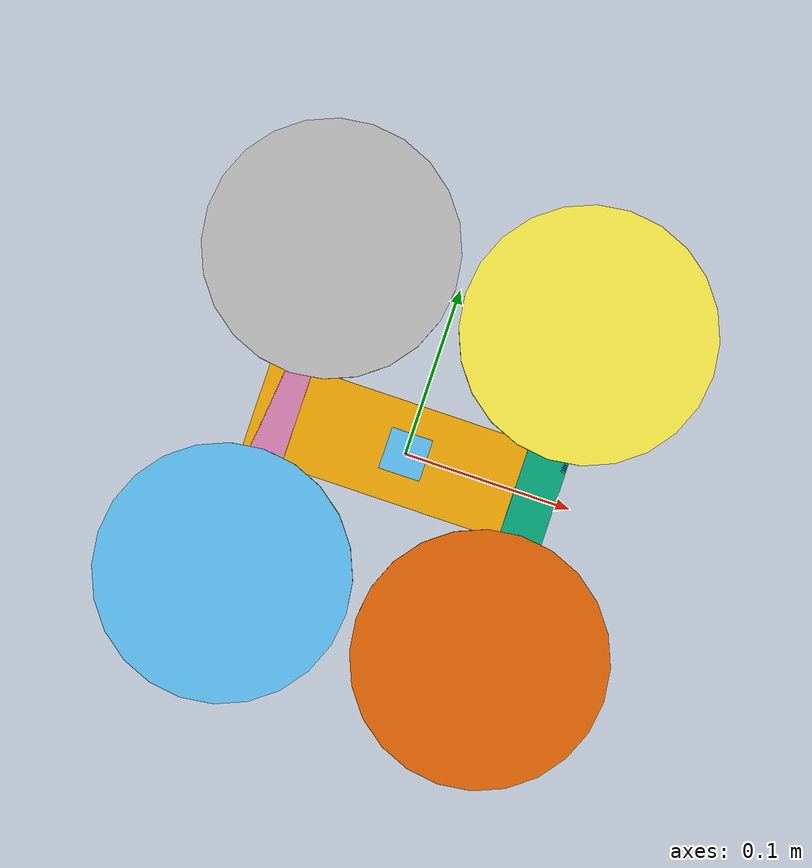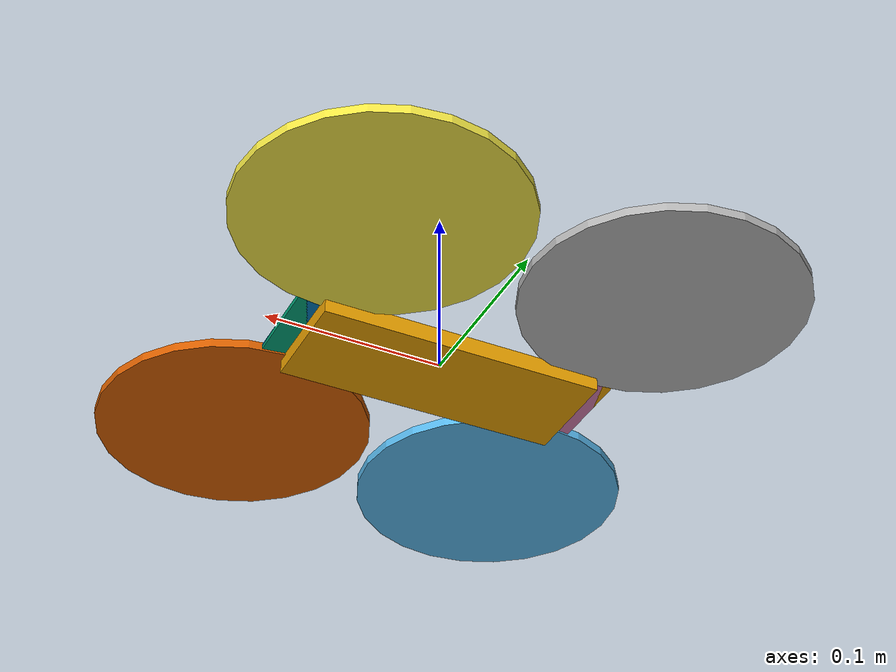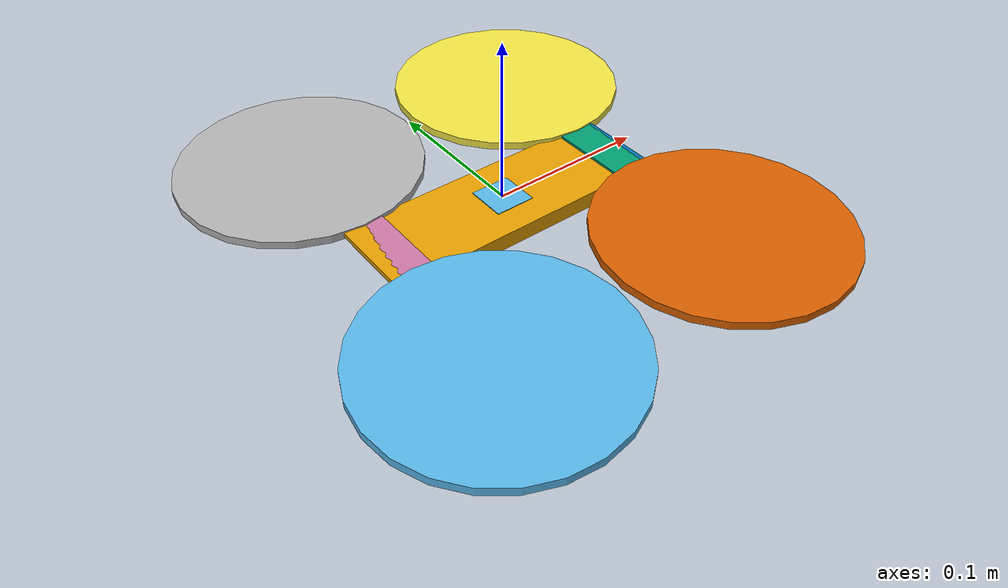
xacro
<?xml version="1.0"?>

<robot xmlns:xacro="http://www.ros.org/wiki/xacro" name="drone">

    <xacro:property name="ARM_MOTOR_LENGTH" value="0.070" />
    <xacro:property name="ARM_LENGTH" value="0.080" />
    <xacro:property name="ARM_WIDTH" value="0.025" />
    <xacro:property name="ARM_THICKNESS" value="0.003" />

    <xacro:property name="PROP_LENGTH" value="0.152" />
    <xacro:property name="PROP_THICKNESS" value="0.005" />

    <xacro:property name="BODY_WIDTH" value="0.059" />
    <xacro:property name="BODY_LENGTH" value="0.158" />
    <xacro:property name="BODY_HEIGHT" value="0.010" />

    <xacro:macro name="prop_arm" params="name">
        <link name="${name}_arm">
            <visual>
                <origin xyz="0 ${-ARM_LENGTH/2} 0"/>
                <geometry>
                    <box size="${ARM_WIDTH} ${ARM_LENGTH} ${ARM_THICKNESS}"/>
                </geometry>
            </visual>
        </link>

        <link name="${name}_prop">
            <visual>
                <geometry>
                    <cylinder radius="${PROP_LENGTH/2}" length="${PROP_THICKNESS}"/>
                </geometry>
            </visual>
        </link>

        <joint name="${name}_prop_joint" type="fixed">
            <parent link="${name}_arm"/>
            <child link="${name}_prop"/>
            <origin xyz="0 ${ARM_MOTOR_LENGTH} 0"/>
        </joint>
    </xacro:macro>

    <link name="base_link">
        <visual>
            <origin xyz="0 0 ${-BODY_HEIGHT/2}"/>
            <geometry>
                <box size="${BODY_LENGTH} ${BODY_WIDTH} ${BODY_HEIGHT}"/>
            </geometry>
        </visual>
    </link>

    <link name="camera">
        <visual>
            <origin xyz="0 0 0"/>
            <geometry>
                <box size="0.001 0.025 0.025"/>
            </geometry>
        </visual>
    </link>

    <xacro:prop_arm name="front_left"/>
    <xacro:prop_arm name="front_right"/>
    <xacro:prop_arm name="back_left"/>
    <xacro:prop_arm name="back_right"/>

    <joint name="front_left_arm_joint" type="fixed">
        <parent link="base_link"/>
        <child link="front_left_arm"/>
        <origin xyz="${BODY_LENGTH/2} ${BODY_WIDTH/2} 0" rpy="0 0 0"/>
    </joint>

    <joint name="back_left_arm_joint" type="fixed">
        <parent link="base_link"/>
        <child link="back_left_arm"/>
        <origin xyz="${-BODY_LENGTH/2} ${BODY_WIDTH/2} 0" rpy="0 0 0"/>
    </joint>

    <joint name="front_right_arm_joint" type="fixed">
        <parent link="base_link"/>
        <child link="front_right_arm"/>
        <origin xyz="${BODY_LENGTH/2} ${-BODY_WIDTH/2} 0" rpy="0 0 ${pi}"/>
    </joint>

    <joint name="back_right_arm_joint" type="fixed">
        <parent link="base_link"/>
        <child link="back_right_arm"/>
        <origin xyz="${-BODY_LENGTH/2} ${-BODY_WIDTH/2} 0" rpy="0 0 ${pi}"/>
    </joint>

    <joint name="camera_body_joint" type="fixed">
        <parent link="base_link"/>
        <child link="camera"/>
        <origin xyz="0 0 0" rpy="0 ${pi/2} 0"/>
    </joint>

</robot>
